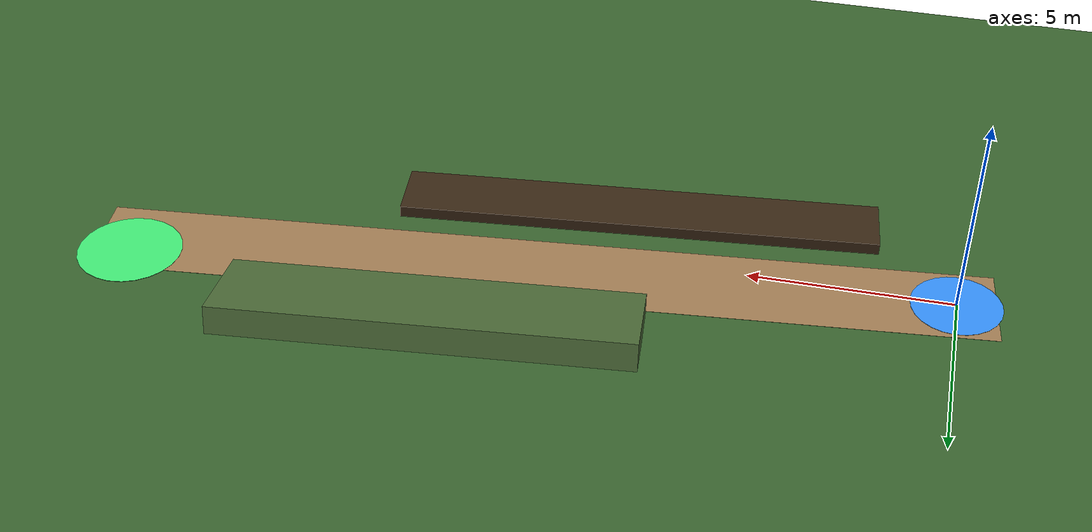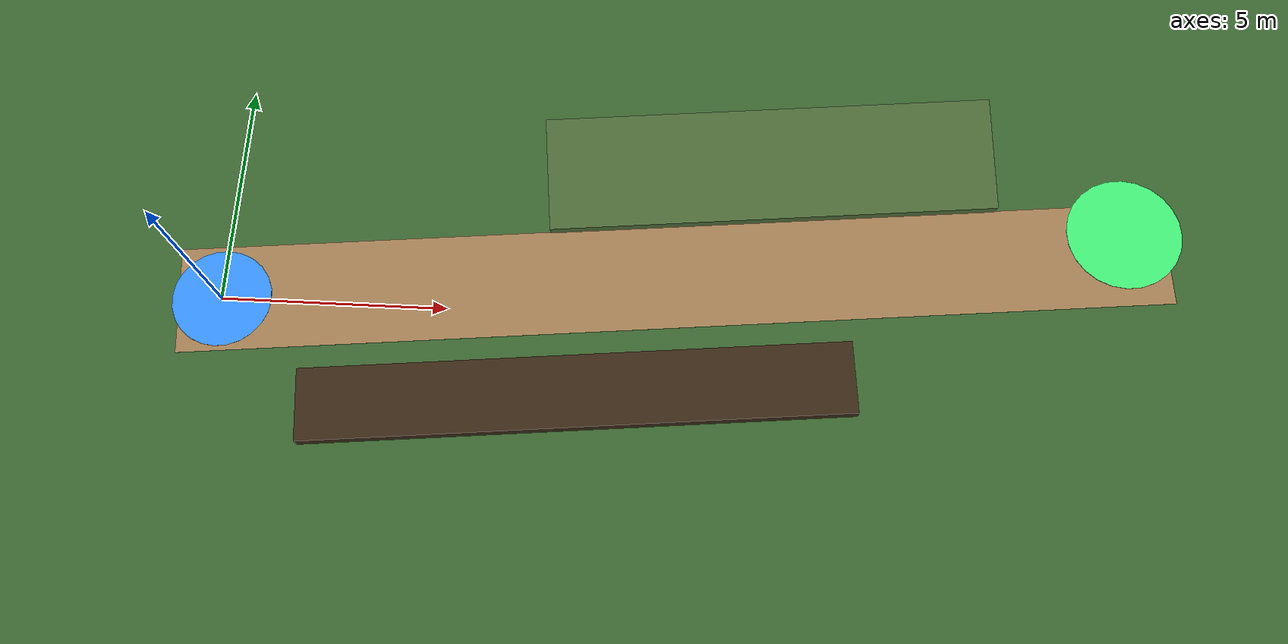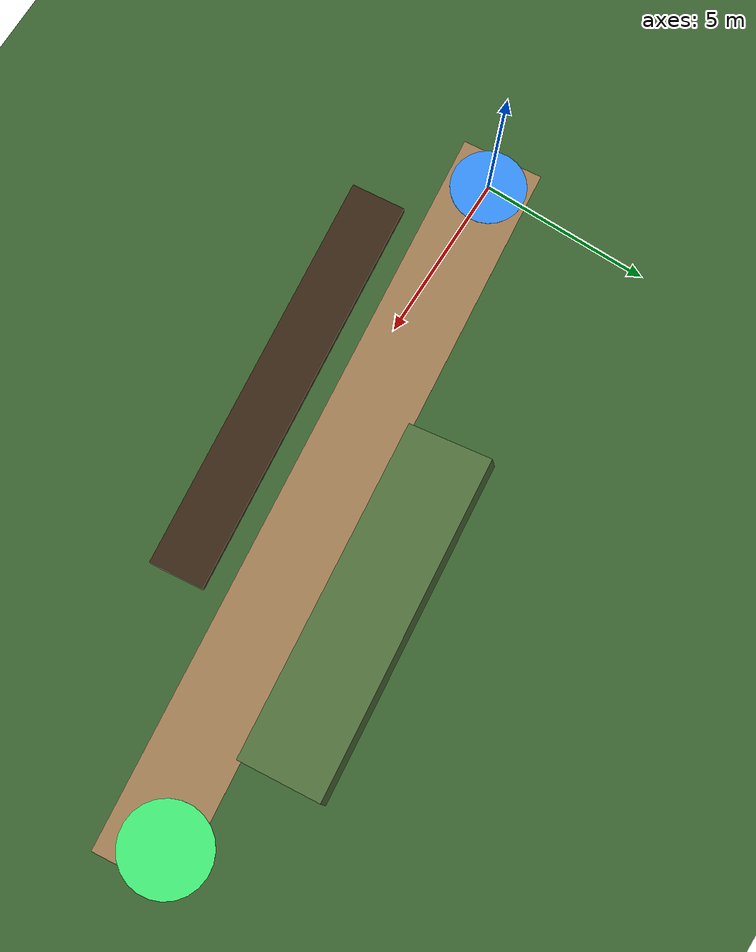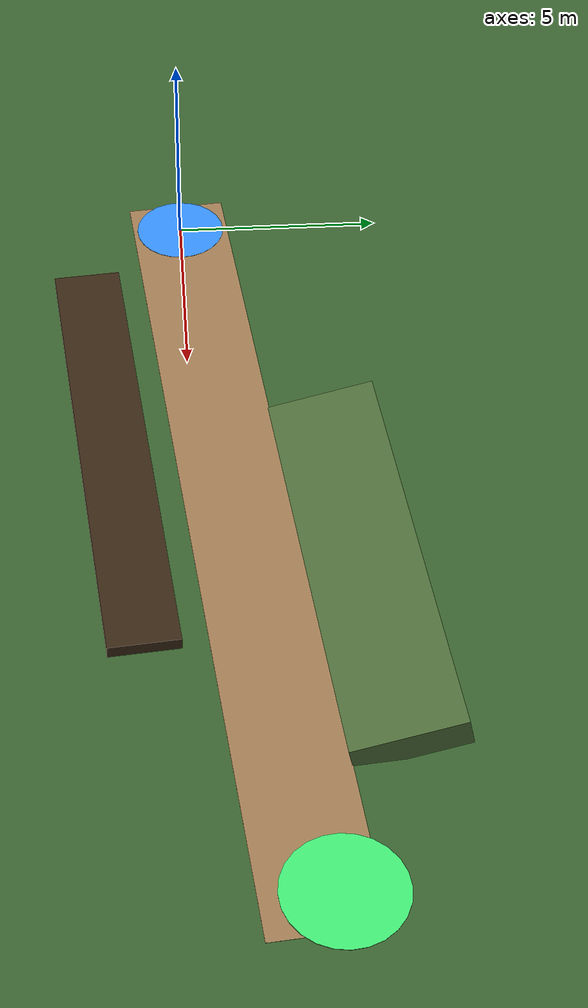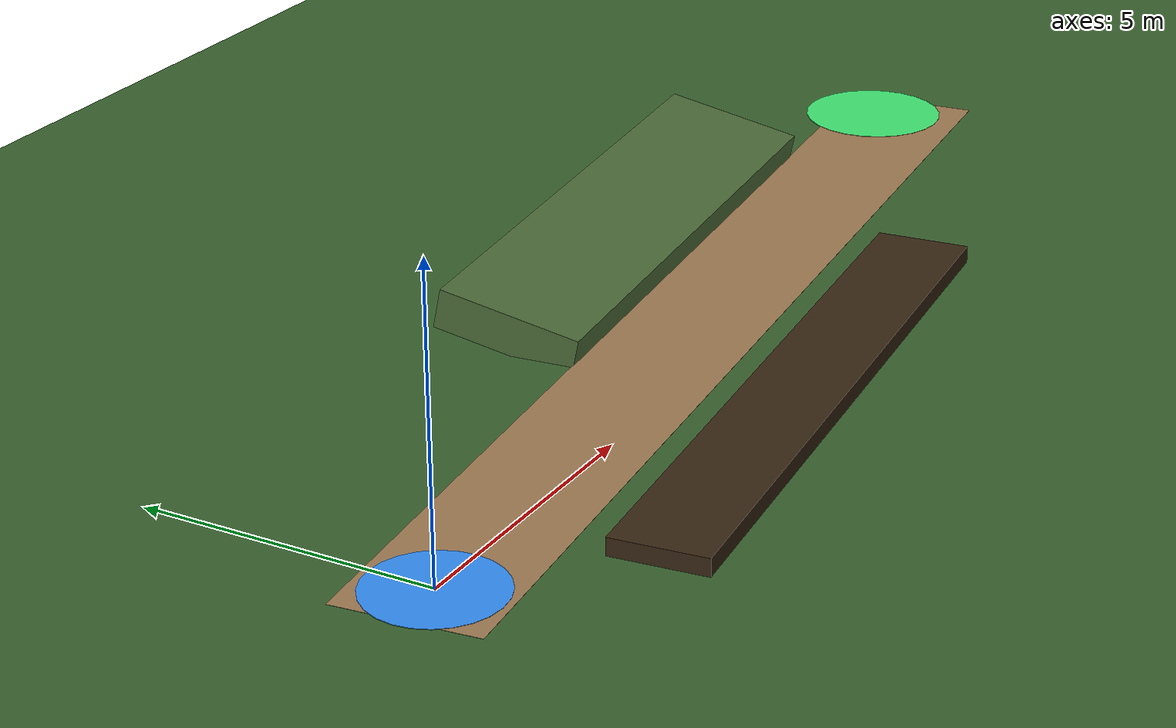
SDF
<?xml version="1.0" ?>
<sdf version="1.8">
  <world name="forest_ditch_slope">
    <physics name="1ms" type="ignored"><max_step_size>0.004</max_step_size><real_time_factor>1.0</real_time_factor></physics>
    <plugin filename="gz-sim-physics-system" name="gz::sim::systems::Physics" />
    <plugin filename="gz-sim-user-commands-system" name="gz::sim::systems::UserCommands" />
    <plugin filename="gz-sim-scene-broadcaster-system" name="gz::sim::systems::SceneBroadcaster" />
    <plugin filename="gz-sim-sensors-system" name="gz::sim::systems::Sensors" />
    <plugin filename="gz-sim-imu-system" name="gz::sim::systems::Imu" />
    <plugin filename="gz-sim-navsat-system" name="gz::sim::systems::NavSat" />

    <light type="directional" name="sun"><cast_shadows>true</cast_shadows><pose>0 0 35 0.5 0.3 0.2</pose><diffuse>0.88 0.86 0.78 1</diffuse><direction>-0.45 0.25 -1</direction></light>
    <scene><ambient>0.55 0.62 0.58 1</ambient><background>0.48 0.68 0.85 1</background><shadows>true</shadows></scene>

    <model name="ground"><static>true</static><link name="l"><collision name="c"><geometry><plane><normal>0 0 1</normal><size>80 80</size></plane></geometry></collision><visual name="v"><geometry><plane><normal>0 0 1</normal><size>80 80</size></plane></geometry><material><ambient>0.18 0.32 0.14 1</ambient><diffuse>0.22 0.38 0.18 1</diffuse></material></visual></link></model>

    <!-- Trail -->
    <model name="trail"><static>true</static><pose>10.0 1.0 0.002 0 0 0.1</pose><link name="l"><visual name="v"><geometry><box><size>22.0 2.4 0.004</size></box></geometry><material><ambient>0.52 0.40 0.26 1</ambient><diffuse>0.62 0.48 0.32 1</diffuse></material></visual></link></model>

    <model name="point_a"><static>true</static><pose>0 0 0.006 0 0 0</pose><link name="l"><visual name="v"><geometry><cylinder><radius>1.1</radius><length>0.01</length></cylinder></geometry><material><ambient>0.15 0.45 0.85 1</ambient><diffuse>0.2 0.55 0.95 1</diffuse></material></visual></link></model>
    <model name="point_b"><static>true</static><pose>20 2.5 0.006 0 0 0</pose><link name="l"><visual name="v"><geometry><cylinder><radius>1.3</radius><length>0.01</length></cylinder></geometry><material><ambient>0.15 0.8 0.35 1</ambient><diffuse>0.25 0.9 0.45 1</diffuse></material></visual></link></model>

    <!-- Dangerous Ditch / Depression trench on the right -->
    <model name="ditch_right">
      <static>true</static>
      <pose>8.0 -1.8 0.15 0 0 0.1</pose>
      <link name="link">
        <visual name="v"><geometry><box><size>12.0 1.6 0.3</size></box></geometry><material><ambient>0.15 0.10 0.05 1</ambient><diffuse>0.22 0.15 0.08 1</diffuse></material></visual>
        <collision name="c"><geometry><box><size>12.0 1.6 0.3</size></box></geometry></collision>
      </link>
    </model>

    <!-- Elevated Slope Hazard on the left -->
    <model name="slope_left">
      <static>true</static>
      <pose>12.0 3.6 0.35 0.2 0 0.1</pose>
      <link name="link">
        <visual name="v"><geometry><box><size>10.0 2.5 0.7</size></box></geometry><material><ambient>0.25 0.35 0.2 1</ambient><diffuse>0.3 0.42 0.22 1</diffuse></material></visual>
        <collision name="c"><geometry><box><size>10.0 2.5 0.7</size></box></geometry></collision>
      </link>
    </model>
  </world>
</sdf>
